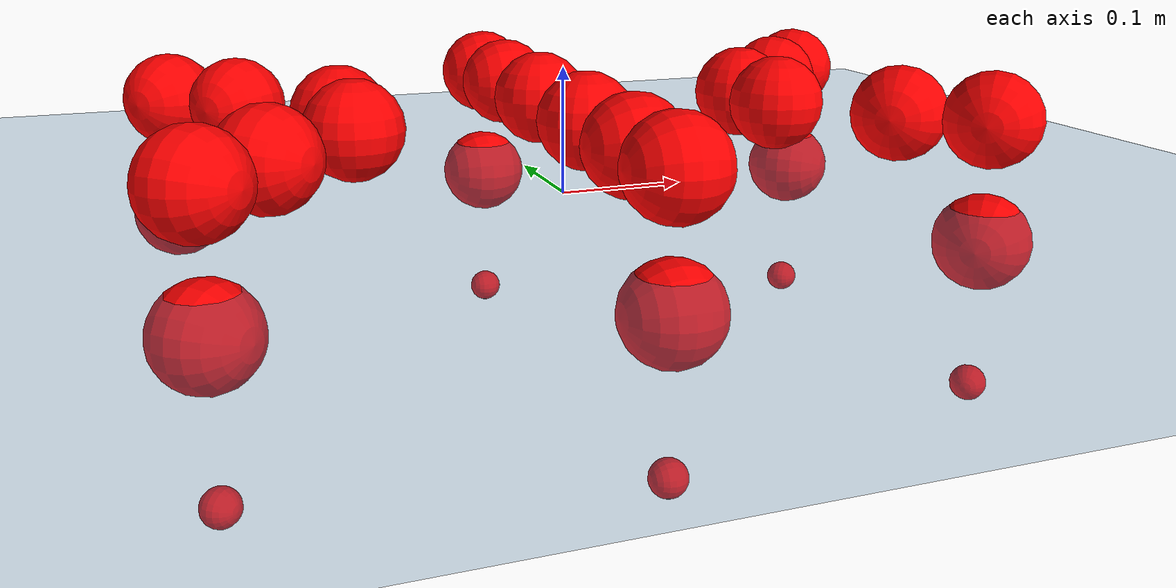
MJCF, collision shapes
<mujoco model="Golem">
  <compiler angle="radian" assetdir="assets" balanceinertia="true" inertiafromgeom="false"/>

  <option timestep="0.005" density="1.2" viscosity="2e-05"/>

  <size nkey="1"/>

  <visual>
    <quality shadowsize="8192"/>
    <map shadowclip="0.5"/>
  </visual>

  <default>
    <default class="/">
      <joint armature="0.01" damping="0.01" frictionloss="0.01"/>
      <geom contype="0" conaffinity="0" group="1" solref="-1000 -80"/>
      <site size="0.01 0.005 0.005" group="5"/>
      <general forcelimited="true" biastype="affine" gainprm="25" biasprm="0 -25 -0.5"/>
      <default class="visual">
        <geom type="mesh" group="2"/>
      </default>
      <default class="collision">
        <geom group="3"/>
      </default>
      <default class="foot">
        <geom size="0.01 0 0" condim="6" group="4" priority="1" solimp="0.015 1 0.01"/>
      </default>
      <default class="reward_collision_sphere">
        <geom group="5" rgba="1 0 0 1"/>
      </default>
    </default>
  </default>

  <asset>
    <texture type="skybox" colorspace="auto" name="//unnamed_texture_0" builtin="gradient" rgb1="0.95 0.95 0.95" rgb2="0.95 0.95 0.95" width="100" height="600"/>
    <texture type="2d" colorspace="auto" name="texplane" builtin="checker" rgb1="0.345 0.575 0.748" rgb2="0.345 0.575 0.748" markrgb="1 1 1" width="512" height="512"/>
    <material name="MatPlane" class="/" texture="texplane" texuniform="true" texrepeat="2 2" specular="0.9"/>
    <mesh name="body" class="/" file="body.stl" scale="0.001 0.001 0.001"/>
    <mesh name="coxa" class="/" file="coxa.stl" scale="0.001 0.001 0.001"/>
    <mesh name="femur" class="/" file="femur.stl" scale="0.001 0.001 0.001"/>
    <mesh name="tibia" class="/" file="tibia.stl" scale="0.001 0.001 0.001"/>
    <mesh name="tarsus" class="/" file="tarsus.stl" scale="0.001 0.001 0.001"/>
  </asset>

  <worldbody>
    <geom name="floor" class="/" size="100 100 0.125" type="plane" group="0" material="MatPlane"/>
    <light name="toplight_shadow" class="/" pos="0 0 5" dir="0.0990148 0.0990148 -0.990148" type="directional" ambient="0.04 0.04 0.04" diffuse="0.55 0.55 0.55" specular="0.12 0.12 0.12"/>
    <light name="toplight_fill" class="/" pos="0 0 5" dir="0.0990148 0.0990148 -0.990148" type="directional" castshadow="false" ambient="0.04 0.04 0.04" diffuse="0.3 0.3 0.3" specular="0.08 0.08 0.08"/>
    <body name="trunk" pos="-0.000355266 -4.82743e-06 -0.000882307" quat="1 -2.33595e-06 -4.15777e-07 1.01067e-06">
      <inertial pos="0.000781955 -0.000796064 -0.00466658" quat="1 -0.000179683 -0.000629845 0.000396723" mass="2.9441" diaginertia="0.0149977 0.00108541 0.0135255"/>
      <joint name="//unnamed_joint_0" type="free"/>
      <geom name="//unnamed_geom_1" class="/" pos="0 0 0.0681372" quat="1 0 0 0" type="mesh" rgba="0.9 0.9 0.9 1" mesh="body"/>
      <site name="imu" class="/" pos="0.140055 0.00433061 0.106008" size="0.00929957"/>
      <camera name="track" class="/" pos="0 -1.28452 0" quat="0.707107 0.707107 0 0" mode="trackcom"/>
      <camera name="ego_camera" class="/" pos="0.140785 0 0.106464" quat="-0.5 -0.5 0.5 0.5"/>
      <body name="coxa_RR" pos="-0.19247 -0.0545934 0.0690127" quat="0.382689 8.2376e-05 -0.000209397 -0.923877">
        <inertial pos="-1.94852e-05 -0.000438628 0.000907078" quat="0.999992 0.00366298 -0.000274632 0.00165111" mass="0.15968" diaginertia="0.0148475 0.00109616 0.0136968"/>
        <joint name="coxa_joint_RR" class="/" pos="0 0 0" axis="-0.000969831 0.00157085 -0.999998" range="-3.1513 3.13959" armature="0.00927628" damping="0.00437187" frictionloss="0.00912576"/>
        <geom name="//unnamed_geom_2" class="/" type="mesh" rgba="0.2 0.2 0.2 1" mesh="coxa"/>
        <geom name="//unnamed_geom_3" class="reward_collision_sphere" size="0.0371983" pos="-0.0324889 0 0"/>
        <body name="femur_RR" pos="0.0655084 0.00109351 -0.00134384" quat="0.500247 -0.499934 0.500006 0.499813">
          <inertial pos="0.000471497 -0.000454316 -0.000272994" quat="1 0.000121255 -0.000249892 -9.98724e-07" mass="0.158899" diaginertia="0.0147066 0.00107739 0.0134891"/>
          <joint name="femur_joint_RR" class="/" pos="0 0 0" axis="0.00100538 -0.000302103 -0.999999" range="-3.12213 3.12094" armature="0.00966696" damping="0" frictionloss="0.00931138"/>
          <geom name="//unnamed_geom_4" class="/" type="mesh" rgba="0.9 0.9 0.9 1" mesh="femur"/>
          <geom name="//unnamed_geom_5" class="reward_collision_sphere" size="0.0371983"/>
          <body name="tibia_RR" pos="0.000311449 -0.0703775 0.00137119" quat="4.24632e-07 1 5.8443e-06 -5.07277e-06">
            <inertial pos="-0.0007127 0.000358755 0.000274422" quat="0.999991 0.00185116 0.0017923 0.00338105" mass="0.16044" diaginertia="0.0147437 0.00107359 0.0136477"/>
            <joint name="tibia_joint_RR" class="/" pos="0 0 0" axis="0.0017788 -0.00315125 0.999993" range="-3.12498 3.12036" armature="0.00905465" damping="0" frictionloss="0.00949269"/>
            <geom name="//unnamed_geom_6" class="/" type="mesh" rgba="0.2 0.2 0.2 1" mesh="tibia"/>
            <geom name="//unnamed_geom_7" class="reward_collision_sphere" size="0.0371983"/>
            <body name="tarsus_RR" pos="0.0957479 0.000516471 -0.000635488" quat="1 1.41233e-05 -3.12791e-05 3.85457e-05">
              <inertial pos="0.0658299 0.00171451 0.000312169" quat="0.49903 0.497908 0.500273 0.502776" mass="0.160328" diaginertia="0.0150868 0.00108859 0.0137185"/>
              <joint name="tarsus_joint_RR" class="/" pos="0 0 0" axis="-0.00801537 -0.00363864 0.999961" range="-3.12872 3.13572" armature="0.00919743" damping="0.0427272" frictionloss="0.00892643"/>
              <geom name="//unnamed_geom_8" class="/" type="mesh" rgba="0.9 0.9 0.9 1" mesh="tarsus"/>
              <geom name="foot_1" class="foot" size="0.00904141" pos="0.121292 0 0" quat="0 -0.707107 0 0.707107"/>
              <geom name="//unnamed_geom_10" class="reward_collision_sphere" size="0.0371983"/>
              <geom name="//unnamed_geom_11" class="reward_collision_sphere" size="0.0139493" pos="0.116419 0 0"/>
              <site name="foot_1" class="foot" pos="0.121292 0 0" quat="0 -0.707107 0 0.707107" size="0.00929957"/>
            </body>
          </body>
        </body>
      </body>
      <body name="coxa_RM" pos="-0.000541138 -0.0854243 0.0687438" quat="0.707089 3.8819e-05 -2.57358e-05 -0.707124">
        <inertial pos="7.20066e-05 -0.000606888 0.000408631" quat="0.999999 0.00030002 0.000971866 0.000213238" mass="0.163189" diaginertia="0.0149468 0.0011007 0.0137196"/>
        <joint name="coxa_joint_RM" class="/" pos="0 0 0" axis="-0.00282648 -0.000328553 -0.999996" range="-3.14744 3.13465" armature="0.0091618" damping="0.0101146" frictionloss="0.00894984"/>
        <geom name="//unnamed_geom_12" class="/" type="mesh" rgba="0.2 0.2 0.2 1" mesh="coxa"/>
        <geom name="//unnamed_geom_13" class="reward_collision_sphere" size="0.0371983" pos="-0.0324889 0 0"/>
        <body name="femur_RM" pos="0.0622899 -0.00126103 0.000181343" quat="0.499976 -0.499756 0.500067 0.5002">
          <inertial pos="-0.00022866 0.000616776 -0.000606665" quat="0.999998 0.00134949 0.0012138 -0.000708994" mass="0.161053" diaginertia="0.0148785 0.00109299 0.0136639"/>
          <joint name="femur_joint_RM" class="/" pos="0 0 0" axis="0.00146209 0.00198535 -0.999997" range="-3.13195 3.15451" armature="0.00925547" damping="0.00236742" frictionloss="0.00942234"/>
          <geom name="//unnamed_geom_14" class="/" type="mesh" rgba="0.9 0.9 0.9 1" mesh="femur"/>
          <geom name="//unnamed_geom_15" class="reward_collision_sphere" size="0.0371983"/>
          <body name="tibia_RM" pos="-4.29498e-05 -0.067994 -3.87065e-05" quat="5.25444e-06 1 -5.31966e-05 2.70087e-05">
            <inertial pos="-0.000499935 -0.00109626 -0.00033586" quat="0.999996 -0.000336747 0.00230835 0.00146002" mass="0.161496" diaginertia="0.0149683 0.00109501 0.0136293"/>
            <joint name="tibia_joint_RM" class="/" pos="0 0 0" axis="0.00164653 -0.000591466 0.999998" range="-3.14565 3.12347" armature="0.00894705" damping="0.00569026" frictionloss="0.00889235"/>
            <geom name="//unnamed_geom_16" class="/" type="mesh" rgba="0.2 0.2 0.2 1" mesh="tibia"/>
            <geom name="//unnamed_geom_17" class="reward_collision_sphere" size="0.0371983"/>
            <body name="tarsus_RM" pos="0.0958886 0.000276765 0.0007301" quat="1 1.82534e-05 6.56769e-05 -0.000125259">
              <inertial pos="0.0654722 -0.000411466 -0.000213588" quat="0.499967 0.50004 0.499984 0.500009" mass="0.159046" diaginertia="0.0146582 0.0010748 0.013536"/>
              <joint name="tarsus_joint_RM" class="/" pos="0 0 0" axis="-0.001193 0.00214828 0.999997" range="-3.13893 3.1423" armature="0.00928848" damping="0.00714388" frictionloss="0.00936618"/>
              <geom name="//unnamed_geom_18" class="/" type="mesh" rgba="0.9 0.9 0.9 1" mesh="tarsus"/>
              <geom name="foot_2" class="foot" size="0.00959894" pos="0.121292 0 0" quat="0 -0.707107 0 0.707107"/>
              <geom name="//unnamed_geom_20" class="reward_collision_sphere" size="0.0371983"/>
              <geom name="//unnamed_geom_21" class="reward_collision_sphere" size="0.0139493" pos="0.116419 0 0"/>
              <site name="foot_2" class="foot" pos="0.121292 0 0" quat="0 -0.707107 0 0.707107" size="0.00929957"/>
            </body>
          </body>
        </body>
      </body>
      <body name="coxa_RF" pos="0.193749 -0.0544227 0.0685177" quat="0.923884 6.43836e-07 -4.83366e-06 -0.382672">
        <inertial pos="3.29327e-05 -0.000336293 -9.19291e-05" quat="0.999999 0.000473403 -1.77521e-05 0.0013821" mass="0.160256" diaginertia="0.0149354 0.00109771 0.0136762"/>
        <joint name="coxa_joint_RF" class="/" pos="0 0 0" axis="0.000275247 0.00102939 -0.999999" range="-3.12062 3.13446" armature="0.00966322" damping="0.00721366" frictionloss="0.00933161"/>
        <geom name="//unnamed_geom_22" class="/" type="mesh" rgba="0.2 0.2 0.2 1" mesh="coxa"/>
        <geom name="//unnamed_geom_23" class="reward_collision_sphere" size="0.0371983" pos="-0.0324889 0 0"/>
        <body name="femur_RF" pos="0.0648625 -0.000186506 -0.000850768" quat="0.500068 -0.500001 0.499978 0.499952">
          <inertial pos="1.33678e-05 -0.000805331 0.000644601" quat="1 -0.000340652 0.000156923 -0.000882814" mass="0.161922" diaginertia="0.014953 0.00109945 0.0137144"/>
          <joint name="femur_joint_RF" class="/" pos="0 0 0" axis="-2.22356e-05 -5.59507e-05 -1" range="-3.14304 3.13456" armature="0.00888653" damping="0.00131107" frictionloss="0.00918525"/>
          <geom name="//unnamed_geom_24" class="/" type="mesh" rgba="0.9 0.9 0.9 1" mesh="femur"/>
          <geom name="//unnamed_geom_25" class="reward_collision_sphere" size="0.0371983"/>
          <body name="tibia_RF" pos="-0.000587815 -0.0692004 -0.00122155" quat="-5.22294e-05 1 -3.24245e-05 9.56818e-06">
            <inertial pos="-9.29619e-05 -0.000521504 -0.000320058" quat="1 0.000539527 0.000127653 0.000639362" mass="0.160725" diaginertia="0.0150592 0.00110598 0.0135944"/>
            <joint name="tibia_joint_RF" class="/" pos="0 0 0" axis="4.3487e-05 -0.000167671 1" range="-3.13736 3.1282" armature="0.00907525" damping="0.0127304" frictionloss="0.00953717"/>
            <geom name="//unnamed_geom_26" class="/" type="mesh" rgba="0.2 0.2 0.2 1" mesh="tibia"/>
            <geom name="//unnamed_geom_27" class="reward_collision_sphere" size="0.0371983"/>
            <body name="tarsus_RF" pos="0.094402 1.57973e-05 0.000852006" quat="1 -4.80085e-05 0.000162874 -8.78263e-05">
              <inertial pos="0.0649607 -0.00013574 -0.000391049" quat="0.500291 0.500119 0.502475 0.497101" mass="0.162523" diaginertia="0.0149696 0.00108749 0.0137268"/>
              <joint name="tarsus_joint_RF" class="/" pos="0 0 0" axis="0.000583032 -0.000151904 1" range="-3.13326 3.1367" armature="0.00975556" damping="0" frictionloss="0.00930278"/>
              <geom name="//unnamed_geom_28" class="/" type="mesh" rgba="0.9 0.9 0.9 1" mesh="tarsus"/>
              <geom name="foot_3" class="foot" size="0.00929919" pos="0.121292 0 0" quat="0 -0.707107 0 0.707107"/>
              <geom name="//unnamed_geom_30" class="reward_collision_sphere" size="0.0371983"/>
              <geom name="//unnamed_geom_31" class="reward_collision_sphere" size="0.0139493" pos="0.116419 0 0"/>
              <site name="foot_3" class="foot" pos="0.121292 0 0" quat="0 -0.707107 0 0.707107" size="0.00929957"/>
            </body>
          </body>
        </body>
      </body>
      <body name="coxa_LR" pos="-0.191916 0.055945 0.0693328" quat="0.382762 -0.000248518 0.000106938 0.923847">
        <inertial pos="3.75961e-05 -0.000827609 0.000344421" quat="0.999996 0.000592856 -0.00143009 0.00221352" mass="0.160285" diaginertia="0.0148855 0.00108955 0.0135749"/>
        <joint name="coxa_joint_LR" class="/" pos="0 0 0" axis="0.00374968 0.000372933 -0.999993" range="-3.12642 3.14475" armature="0.00926799" damping="0.00792217" frictionloss="0.00910923"/>
        <geom name="//unnamed_geom_32" class="/" type="mesh" rgba="0.2 0.2 0.2 1" mesh="coxa"/>
        <geom name="//unnamed_geom_33" class="reward_collision_sphere" size="0.0371983" pos="-0.0324889 0 0"/>
        <body name="femur_LR" pos="0.0665749 -0.00182979 -0.000823255" quat="0.499962 -0.500304 0.499625 0.50011">
          <inertial pos="-7.80576e-05 -8.73997e-05 0.000319976" quat="0.999999 -7.51061e-05 -0.00126748 -0.000876798" mass="0.161746" diaginertia="0.0147639 0.00108737 0.0137464"/>
          <joint name="femur_joint_LR" class="/" pos="0 0 0" axis="0.000171914 0.00215388 0.999998" range="-3.12422 3.14953" armature="0.00893435" damping="0.00894069" frictionloss="0.00922155"/>
          <geom name="//unnamed_geom_34" class="/" type="mesh" rgba="0.9 0.9 0.9 1" mesh="femur"/>
          <geom name="//unnamed_geom_35" class="reward_collision_sphere" size="0.0371983"/>
          <body name="tibia_LR" pos="0.000971529 -0.0703244 -0.00117793" quat="-0.000295217 1 -0.000393431 -0.000207379">
            <inertial pos="-6.45644e-05 -0.000400754 -0.000426303" quat="0.99999 0.00231835 -0.000712678 0.0036767" mass="0.160625" diaginertia="0.0147202 0.00108286 0.0136411"/>
            <joint name="tibia_joint_LR" class="/" pos="0 0 0" axis="-0.000246439 -0.000355229 -1" stiffness="5.07782e-05" range="-3.12838 3.12175" armature="0.00968147" damping="0" frictionloss="0.00888916"/>
            <geom name="//unnamed_geom_36" class="/" type="mesh" rgba="0.2 0.2 0.2 1" mesh="tibia"/>
            <geom name="//unnamed_geom_37" class="reward_collision_sphere" size="0.0371983"/>
            <body name="tarsus_LR" pos="0.0953798 0.000937456 0.00110314" quat="1 -0.000148773 4.1878e-05 7.26883e-06">
              <inertial pos="0.0646295 0.000331136 -0.000249711" quat="0.50093 0.500055 0.502453 0.496543" mass="0.158231" diaginertia="0.0148322 0.00108407 0.0136063"/>
              <joint name="tarsus_joint_LR" class="/" pos="0 0 0" axis="0.00140151 0.0013953 -0.999998" range="-3.13479 3.14186" armature="0.00930243" damping="0.0291803" frictionloss="0.00931818"/>
              <geom name="//unnamed_geom_38" class="/" type="mesh" rgba="0.9 0.9 0.9 1" mesh="tarsus"/>
              <geom name="foot_4" class="foot" size="0.00930723" pos="0.121292 0 0" quat="0.707107 0 -0.707107 0"/>
              <geom name="//unnamed_geom_40" class="reward_collision_sphere" size="0.0371983"/>
              <geom name="//unnamed_geom_41" class="reward_collision_sphere" size="0.0139493" pos="0.116419 0 0"/>
              <site name="foot_4" class="foot" pos="0.121292 0 0" quat="0.707107 0 -0.707107 0" size="0.00929957"/>
            </body>
          </body>
        </body>
      </body>
      <body name="coxa_LM" pos="-0.00164873 0.083229 0.0693052" quat="0.70739 0.000249564 0.000361892 0.706824">
        <inertial pos="0.000660602 -0.000195263 0.00158289" quat="1 -5.91223e-05 9.56497e-05 0.000593971" mass="0.161096" diaginertia="0.0149593 0.00108753 0.0136916"/>
        <joint name="coxa_joint_LM" class="/" pos="0 0 0" axis="-0.00017626 2.39403e-05 -1" range="-3.138 3.13769" armature="0.00935436" damping="0.00567543" frictionloss="0.00970383"/>
        <geom name="//unnamed_geom_42" class="/" type="mesh" rgba="0.2 0.2 0.2 1" mesh="coxa"/>
        <geom name="//unnamed_geom_43" class="reward_collision_sphere" size="0.0371983" pos="-0.0324889 0 0"/>
        <body name="femur_LM" pos="0.0620887 0.0010247 -0.000991574" quat="0.500002 -0.499992 0.500012 0.499994">
          <inertial pos="-0.000601162 -0.000749137 1.31542e-06" quat="1 -0.000422226 -0.000380203 0.000145602" mass="0.160994" diaginertia="0.0147808 0.00109525 0.0137485"/>
          <joint name="femur_joint_LM" class="/" pos="0 0 0" axis="0.00164648 0.00402813 0.999991" range="-3.1343 3.15138" armature="0.00898178" damping="0.00456989" frictionloss="0.0089086"/>
          <geom name="//unnamed_geom_44" class="/" type="mesh" rgba="0.9 0.9 0.9 1" mesh="femur"/>
          <geom name="//unnamed_geom_45" class="reward_collision_sphere" size="0.0371983"/>
          <body name="tibia_LM" pos="0.000238787 -0.0674176 0.00104838" quat="3.64486e-05 1 8.09099e-05 1.25546e-05">
            <inertial pos="0.000833126 -0.00111379 0.000725537" quat="0.999992 -0.00252642 0.0025134 0.0015314" mass="0.160824" diaginertia="0.0150018 0.00108891 0.013784"/>
            <joint name="tibia_joint_LM" class="/" pos="0 0 0" axis="0.00389979 0.0017351 -0.999991" range="-3.13911 3.13931" armature="0.00929769" damping="0.0017538" frictionloss="0.00933981"/>
            <geom name="//unnamed_geom_46" class="/" type="mesh" rgba="0.2 0.2 0.2 1" mesh="tibia"/>
            <geom name="//unnamed_geom_47" class="reward_collision_sphere" size="0.0371983"/>
            <body name="tarsus_LM" pos="0.095242 -0.000260176 -0.0010781" quat="1 5.90904e-05 -1.80946e-05 1.63874e-05">
              <inertial pos="0.0665465 0.000237286 0.000296694" quat="0.501364 0.499758 0.500352 0.498522" mass="0.160819" diaginertia="0.0149329 0.00110478 0.0138877"/>
              <joint name="tarsus_joint_LM" class="/" pos="0 0 0" axis="-0.000345444 0.00116924 -0.999999" range="-3.13168 3.14097" armature="0.00945539" damping="0.00156346" frictionloss="0.00926681"/>
              <geom name="//unnamed_geom_48" class="/" type="mesh" rgba="0.9 0.9 0.9 1" mesh="tarsus"/>
              <geom name="foot_5" class="foot" size="0.00946409" pos="0.121292 0 0" quat="0.707107 0 -0.707107 0"/>
              <geom name="//unnamed_geom_50" class="reward_collision_sphere" size="0.0371983"/>
              <geom name="//unnamed_geom_51" class="reward_collision_sphere" size="0.0139493" pos="0.116419 0 0"/>
              <site name="foot_5" class="foot" pos="0.121292 0 0" quat="0.707107 0 -0.707107 0" size="0.00929957"/>
            </body>
          </body>
        </body>
      </body>
      <body name="coxa_LF" pos="0.19314 0.0530018 0.0679799" quat="0.92388 -3.14084e-06 1.15846e-06 0.382683">
        <inertial pos="0.000180239 -0.000373104 -0.000177911" quat="0.999993 0.000267466 -0.00244253 0.00289325" mass="0.162459" diaginertia="0.0151002 0.00110097 0.0136463"/>
        <joint name="coxa_joint_LF" class="/" pos="0 0 0" axis="0.000726895 0.000394508 -1" range="-3.13882 3.14123" armature="0.0091889" damping="0.00409336" frictionloss="0.00952017"/>
        <geom name="//unnamed_geom_52" class="/" type="mesh" rgba="0.2 0.2 0.2 1" mesh="coxa"/>
        <geom name="//unnamed_geom_53" class="reward_collision_sphere" size="0.0371983" pos="-0.0324889 0 0"/>
        <body name="femur_LF" pos="0.0641917 -0.000995065 -0.0013768" quat="0.499831 -0.500072 0.500093 0.500005">
          <inertial pos="-3.09747e-05 0.000228606 0.000192065" quat="1 7.12995e-05 0.000284086 0.000613621" mass="0.160176" diaginertia="0.0149619 0.00109096 0.0137055"/>
          <joint name="femur_joint_LF" class="/" pos="0 0 0" axis="-0.00584587 -0.00447368 0.999973" range="-3.1381 3.15501" armature="0.00888843" damping="0.00101329" frictionloss="0.00915997"/>
          <geom name="//unnamed_geom_54" class="/" type="mesh" rgba="0.9 0.9 0.9 1" mesh="femur"/>
          <geom name="//unnamed_geom_55" class="reward_collision_sphere" size="0.0371983"/>
          <body name="tibia_LF" pos="0.000611438 -0.0687804 0.000282325" quat="8.55149e-05 1 0.000294346 -0.000141899">
            <inertial pos="-0.000227151 0.000235379 0.000118775" quat="1 0.000226841 -0.000338632 0.0002354" mass="0.161114" diaginertia="0.0149587 0.00109091 0.013691"/>
            <joint name="tibia_joint_LF" class="/" pos="0 0 0" axis="-0.000227456 -0.00570231 -0.999984" range="-3.13256 3.12188" armature="0.00921405" damping="0.00289099" frictionloss="0.00933692"/>
            <geom name="//unnamed_geom_56" class="/" type="mesh" rgba="0.2 0.2 0.2 1" mesh="tibia"/>
            <geom name="//unnamed_geom_57" class="reward_collision_sphere" size="0.0371983"/>
            <body name="tarsus_LF" pos="0.0951375 -0.000242551 0.000759517" quat="1 1.05331e-05 1.96054e-05 0.000262983">
              <inertial pos="0.066411 -0.000411157 -0.000264931" quat="0.500305 0.499375 0.500211 0.500108" mass="0.160841" diaginertia="0.0149484 0.00109803 0.0135758"/>
              <joint name="tarsus_joint_LF" class="/" pos="0 0 0" axis="0.00113106 0.00630959 -0.999979" stiffness="0.0254375" range="-3.14068 3.14338" armature="0.00927928" damping="0.00498664" frictionloss="0.0094377"/>
              <geom name="//unnamed_geom_58" class="/" type="mesh" rgba="0.9 0.9 0.9 1" mesh="tarsus"/>
              <geom name="foot_6" class="foot" size="0.00924827" pos="0.121292 0 0" quat="0.707107 0 -0.707107 0"/>
              <geom name="//unnamed_geom_60" class="reward_collision_sphere" size="0.0371983"/>
              <geom name="//unnamed_geom_61" class="reward_collision_sphere" size="0.0139493" pos="0.116419 0 0"/>
              <site name="foot_6" class="foot" pos="0.121292 0 0" quat="0.707107 0 -0.707107 0" size="0.00929957"/>
            </body>
          </body>
        </body>
      </body>
    </body>
  </worldbody>

  <contact>
    <pair class="/" geom1="floor" geom2="foot_1" name="//unnamed_contact_0"/>
    <pair class="/" geom1="floor" geom2="foot_2" name="//unnamed_contact_1"/>
    <pair class="/" geom1="floor" geom2="foot_3" name="//unnamed_contact_2"/>
    <pair class="/" geom1="floor" geom2="foot_4" name="//unnamed_contact_3"/>
    <pair class="/" geom1="floor" geom2="foot_5" name="//unnamed_contact_4"/>
    <pair class="/" geom1="floor" geom2="foot_6" name="//unnamed_contact_5"/>
  </contact>

  <actuator>
    <general name="coxa_joint_RR" class="/" joint="coxa_joint_RR" forcerange="-6.66778 6.66778" gainprm="22.4764" biasprm="0 -22.4764 -0.479912"/>
    <general name="femur_joint_RR" class="/" joint="femur_joint_RR" forcerange="-6.98801 6.98801" gainprm="22.4764" biasprm="0 -22.4764 -0.479912"/>
    <general name="tibia_joint_RR" class="/" joint="tibia_joint_RR" forcerange="-6.67672 6.67672" gainprm="22.4764" biasprm="0 -22.4764 -0.479912"/>
    <general name="tarsus_joint_RR" class="/" joint="tarsus_joint_RR" forcerange="-7.01268 7.01268" gainprm="22.4764" biasprm="0 -22.4764 -0.479912"/>
    <general name="coxa_joint_RM" class="/" joint="coxa_joint_RM" forcerange="-6.77832 6.77832" gainprm="22.4764" biasprm="0 -22.4764 -0.479912"/>
    <general name="femur_joint_RM" class="/" joint="femur_joint_RM" forcerange="-6.71383 6.71383" gainprm="22.4764" biasprm="0 -22.4764 -0.479912"/>
    <general name="tibia_joint_RM" class="/" joint="tibia_joint_RM" forcerange="-6.59545 6.59545" gainprm="22.4764" biasprm="0 -22.4764 -0.479912"/>
    <general name="tarsus_joint_RM" class="/" joint="tarsus_joint_RM" forcerange="-6.75164 6.75164" gainprm="22.4764" biasprm="0 -22.4764 -0.479912"/>
    <general name="coxa_joint_RF" class="/" joint="coxa_joint_RF" forcerange="-6.86711 6.86711" gainprm="22.4764" biasprm="0 -22.4764 -0.479912"/>
    <general name="femur_joint_RF" class="/" joint="femur_joint_RF" forcerange="-6.98878 6.98878" gainprm="22.4764" biasprm="0 -22.4764 -0.479912"/>
    <general name="tibia_joint_RF" class="/" joint="tibia_joint_RF" forcerange="-6.5948 6.5948" gainprm="22.4764" biasprm="0 -22.4764 -0.479912"/>
    <general name="tarsus_joint_RF" class="/" joint="tarsus_joint_RF" forcerange="-6.978 6.978" gainprm="22.4764" biasprm="0 -22.4764 -0.479912"/>
    <general name="coxa_joint_LR" class="/" joint="coxa_joint_LR" forcerange="-6.8865 6.8865" gainprm="22.4764" biasprm="0 -22.4764 -0.479912"/>
    <general name="femur_joint_LR" class="/" joint="femur_joint_LR" forcerange="-6.71961 6.71961" gainprm="22.4764" biasprm="0 -22.4764 -0.479912"/>
    <general name="tibia_joint_LR" class="/" joint="tibia_joint_LR" forcerange="-6.5675 6.5675" gainprm="22.4764" biasprm="0 -22.4764 -0.479912"/>
    <general name="tarsus_joint_LR" class="/" joint="tarsus_joint_LR" forcerange="-6.74977 6.74977" gainprm="22.4764" biasprm="0 -22.4764 -0.479912"/>
    <general name="coxa_joint_LM" class="/" joint="coxa_joint_LM" forcerange="-6.60962 6.60962" gainprm="22.4764" biasprm="0 -22.4764 -0.479912"/>
    <general name="femur_joint_LM" class="/" joint="femur_joint_LM" forcerange="-6.76164 6.76164" gainprm="22.4764" biasprm="0 -22.4764 -0.479912"/>
    <general name="tibia_joint_LM" class="/" joint="tibia_joint_LM" forcerange="-6.73697 6.73697" gainprm="22.4764" biasprm="0 -22.4764 -0.479912"/>
    <general name="tarsus_joint_LM" class="/" joint="tarsus_joint_LM" forcerange="-6.99221 6.99221" gainprm="22.4764" biasprm="0 -22.4764 -0.479912"/>
    <general name="coxa_joint_LF" class="/" joint="coxa_joint_LF" forcerange="-6.75349 6.75349" gainprm="22.4764" biasprm="0 -22.4764 -0.479912"/>
    <general name="femur_joint_LF" class="/" joint="femur_joint_LF" forcerange="-6.85483 6.85483" gainprm="22.4764" biasprm="0 -22.4764 -0.479912"/>
    <general name="tibia_joint_LF" class="/" joint="tibia_joint_LF" forcerange="-6.80543 6.80543" gainprm="22.4764" biasprm="0 -22.4764 -0.479912"/>
    <general name="tarsus_joint_LF" class="/" joint="tarsus_joint_LF" forcerange="-6.80087 6.80087" gainprm="22.4764" biasprm="0 -22.4764 -0.479912"/>
  </actuator>

  <sensor>
    <gyro site="imu" name="imu_angular_velocity"/>
    <velocimeter site="imu" name="imu_linear_velocity"/>
    <framelinvel objtype="site" objname="foot_1" name="foot_1_global_linear_velocity"/>
    <framelinvel objtype="site" objname="foot_2" name="foot_2_global_linear_velocity"/>
    <framelinvel objtype="site" objname="foot_3" name="foot_3_global_linear_velocity"/>
    <framelinvel objtype="site" objname="foot_4" name="foot_4_global_linear_velocity"/>
    <framelinvel objtype="site" objname="foot_5" name="foot_5_global_linear_velocity"/>
    <framelinvel objtype="site" objname="foot_6" name="foot_6_global_linear_velocity"/>
  </sensor>

  <keyframe>
    <key name="home" qpos="0 0 0.1457 1 0 0 0 0 0 0 0 0 0 0 0 0 0 0 0 0 0 0 0 0 0 0 0 0 0 0 0"/>
  </keyframe>
</mujoco>
